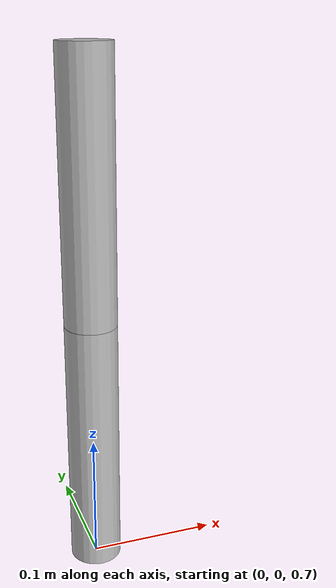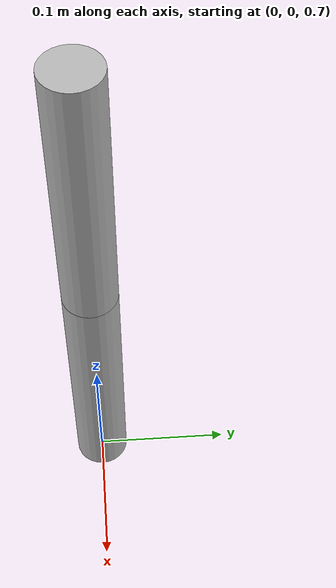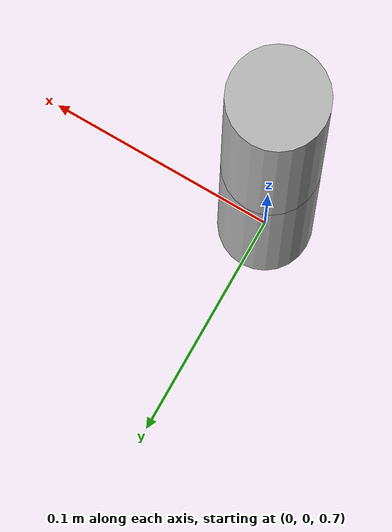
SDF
<?xml version="1.0" ?>
<sdf version="1.9">
  <world name="universal_joint_world">
    <gravity>0 0 -0</gravity>

    <!-- Ground plane and light -->

    <!-- Two-link model -->
    <model name="two_links_universal">
      <pose>0 0 0.5 0 0 0</pose>
      <static>false</static>

      <!-- First link -->
      <link name="link1">
        <pose>0 0 0.5 0 0 0</pose>
        <inertial>
          <mass>1.0</mass>
          <inertia>
            <ixx>0.001</ixx>
            <iyy>0.001</iyy>
            <izz>0.001</izz>
          </inertia>
        </inertial>
        <collision name="collision">
          <geometry>
            <cylinder>
              <radius>0.02</radius>
              <length>0.2</length>
            </cylinder>
          </geometry>
        </collision>
        <visual name="visual">
          <geometry>
            <cylinder>
              <radius>0.02</radius>
              <length>0.2</length>
            </cylinder>
          </geometry>
        </visual>
      </link>

      <!-- Second link -->
      <link name="link2">
        <pose>0 0 0.3 0 0 0</pose>
        <inertial>
          <mass>1.0</mass>
          <inertia>
            <ixx>0.001</ixx>
            <iyy>0.001</iyy>
            <izz>0.001</izz>
          </inertia>
        </inertial>
        <collision name="collision">
          <geometry>
            <cylinder>
              <radius>0.02</radius>
              <length>0.2</length>
            </cylinder>
          </geometry>
        </collision>
        <visual name="visual">
          <geometry>
            <cylinder>
              <radius>0.02</radius>
              <length>0.2</length>
            </cylinder>
          </geometry>
        </visual>
      </link>

      <!-- Universal joint connecting the links -->
      <joint name="u_joint" type="universal">
        <parent>link1</parent>
        <child>link2</child>

        <!-- First rotation axis (X axis in link1 frame) -->
        <axis>
          <xyz>1 0 0</xyz>
          <dynamics>
            <damping>0.01</damping>
          </dynamics>
        </axis>

        <!-- Second rotation axis (Y axis in link2 frame) -->
        <axis2>
          <xyz>0 1 0</xyz>
          <dynamics>
            <damping>0.01</damping>
          </dynamics>
        </axis2>
      </joint>
    </model>
  </world>
</sdf>
